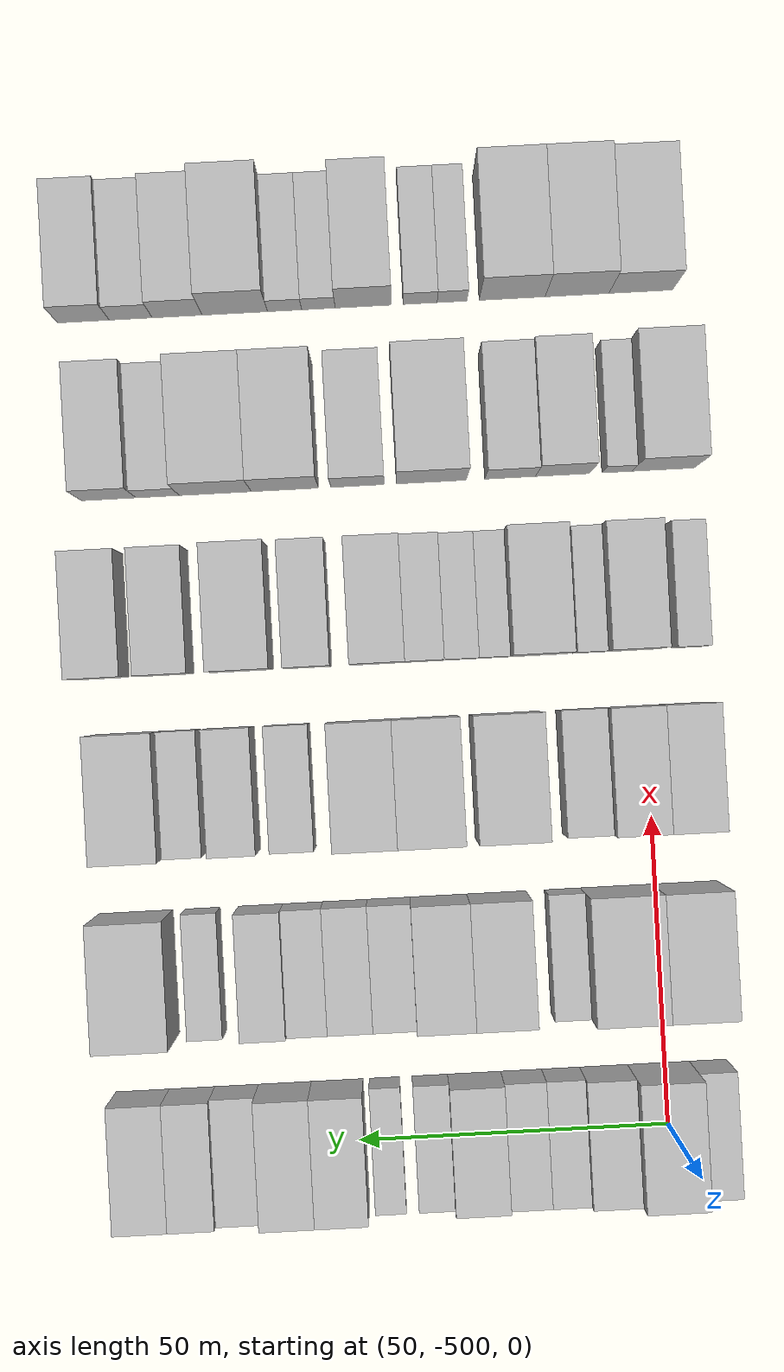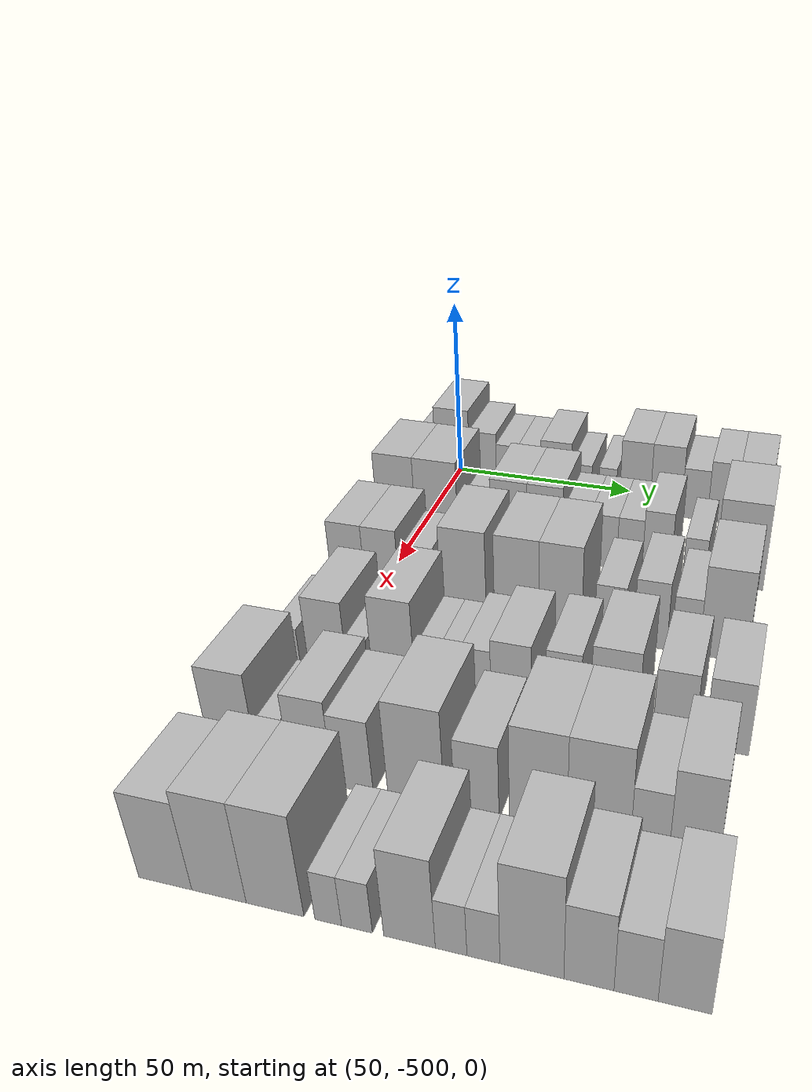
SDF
<sdf version="1.6">
 <world name="default">
  <model name="building_1">
   <static>1</static>
   <pose>50.0000 -506.9916 0 0.000000 0.000000 0.000000</pose>
   <link name="link">
    <pose>0 0 7.50 0 0 0</pose>
    <collision name="collision"><geometry><box><size>20.0000 6.0168 15.0000</size></box></geometry></collision>
    <visual name="visual">
     <cast_shadows>0</cast_shadows>
     <geometry><box><size>20.0000 6.0168 15.0000</size></box></geometry>
     <material>
      <script>
       <uri>model://HANNAS_wall/materials/scripts</uri>
       <uri>model://HANNAS_wall/materials/textures</uri>
       <name>vrc/HANNAS_wall</name>
      </script>
     </material>
    </visual>
   </link>
  </model>
  <model name="building_2">
   <static>1</static>
   <pose>50.0000 -498.9707 0 0.000000 0.000000 0.000000</pose>
   <link name="link">
    <pose>0 0 12.00 0 0 0</pose>
    <collision name="collision"><geometry><box><size>20.0000 10.0249 24.0000</size></box></geometry></collision>
    <visual name="visual">
     <cast_shadows>0</cast_shadows>
     <geometry><box><size>20.0000 10.0249 24.0000</size></box></geometry>
     <material>
      <script>
       <uri>model://HANNAS_wall/materials/scripts</uri>
       <uri>model://HANNAS_wall/materials/textures</uri>
       <name>vrc/HANNAS_wall</name>
      </script>
     </material>
    </visual>
   </link>
  </model>
  <model name="building_3">
   <static>1</static>
   <pose>50.0000 -490.0602 0 0.000000 0.000000 0.000000</pose>
   <link name="link">
    <pose>0 0 9.00 0 0 0</pose>
    <collision name="collision"><geometry><box><size>20.0000 7.7961 18.0000</size></box></geometry></collision>
    <visual name="visual">
     <cast_shadows>0</cast_shadows>
     <geometry><box><size>20.0000 7.7961 18.0000</size></box></geometry>
     <material>
      <script>
       <uri>model://HANNAS_wall/materials/scripts</uri>
       <uri>model://HANNAS_wall/materials/textures</uri>
       <name>vrc/HANNAS_wall</name>
      </script>
     </material>
    </visual>
   </link>
  </model>
  <model name="building_4">
   <static>1</static>
   <pose>50.0000 -483.0821 0 0.000000 0.000000 0.000000</pose>
   <link name="link">
    <pose>0 0 7.50 0 0 0</pose>
    <collision name="collision"><geometry><box><size>20.0000 6.1601 15.0000</size></box></geometry></collision>
    <visual name="visual">
     <cast_shadows>0</cast_shadows>
     <geometry><box><size>20.0000 6.1601 15.0000</size></box></geometry>
     <material>
      <script>
       <uri>model://HANNAS_wall/materials/scripts</uri>
       <uri>model://HANNAS_wall/materials/textures</uri>
       <name>vrc/HANNAS_wall</name>
      </script>
     </material>
    </visual>
   </link>
  </model>
  <model name="building_5">
   <static>1</static>
   <pose>50.0000 -476.6821 0 0.000000 0.000000 0.000000</pose>
   <link name="link">
    <pose>0 0 7.50 0 0 0</pose>
    <collision name="collision"><geometry><box><size>20.0000 6.6398 15.0000</size></box></geometry></collision>
    <visual name="visual">
     <cast_shadows>0</cast_shadows>
     <geometry><box><size>20.0000 6.6398 15.0000</size></box></geometry>
     <material>
      <script>
       <uri>model://HANNAS_wall/materials/scripts</uri>
       <uri>model://HANNAS_wall/materials/textures</uri>
       <name>vrc/HANNAS_wall</name>
      </script>
     </material>
    </visual>
   </link>
  </model>
  <model name="building_6">
   <static>1</static>
   <pose>50.0000 -469.0434 0 0.000000 0.000000 0.000000</pose>
   <link name="link">
    <pose>0 0 9.00 0 0 0</pose>
    <collision name="collision"><geometry><box><size>20.0000 8.6375 18.0000</size></box></geometry></collision>
    <visual name="visual">
     <cast_shadows>0</cast_shadows>
     <geometry><box><size>20.0000 8.6375 18.0000</size></box></geometry>
     <material>
      <script>
       <uri>model://HANNAS_wall/materials/scripts</uri>
       <uri>model://HANNAS_wall/materials/textures</uri>
       <name>vrc/HANNAS_wall</name>
      </script>
     </material>
    </visual>
   </link>
  </model>
  <model name="building_7">
   <static>1</static>
   <pose>50.0000 -461.8559 0 0.000000 0.000000 0.000000</pose>
   <link name="link">
    <pose>0 0 6.00 0 0 0</pose>
    <collision name="collision"><geometry><box><size>20.0000 5.7375 12.0000</size></box></geometry></collision>
    <visual name="visual">
     <cast_shadows>0</cast_shadows>
     <geometry><box><size>20.0000 5.7375 12.0000</size></box></geometry>
     <material>
      <script>
       <uri>model://HANNAS_wall/materials/scripts</uri>
       <uri>model://HANNAS_wall/materials/textures</uri>
       <name>vrc/HANNAS_wall</name>
      </script>
     </material>
    </visual>
   </link>
  </model>
  <model name="building_8">
   <static>1</static>
   <pose>50.0000 -454.5249 0 0.000000 0.000000 0.000000</pose>
   <link name="link">
    <pose>0 0 6.00 0 0 0</pose>
    <collision name="collision"><geometry><box><size>20.0000 4.9245 12.0000</size></box></geometry></collision>
    <visual name="visual">
     <cast_shadows>0</cast_shadows>
     <geometry><box><size>20.0000 4.9245 12.0000</size></box></geometry>
     <material>
      <script>
       <uri>model://HANNAS_wall/materials/scripts</uri>
       <uri>model://HANNAS_wall/materials/textures</uri>
       <name>vrc/HANNAS_wall</name>
      </script>
     </material>
    </visual>
   </link>
  </model>
  <model name="building_9">
   <static>1</static>
   <pose>50.0000 -446.8596 0 0.000000 0.000000 0.000000</pose>
   <link name="link">
    <pose>0 0 10.50 0 0 0</pose>
    <collision name="collision"><geometry><box><size>20.0000 8.4061 21.0000</size></box></geometry></collision>
    <visual name="visual">
     <cast_shadows>0</cast_shadows>
     <geometry><box><size>20.0000 8.4061 21.0000</size></box></geometry>
     <material>
      <script>
       <uri>model://HANNAS_wall/materials/scripts</uri>
       <uri>model://HANNAS_wall/materials/textures</uri>
       <name>vrc/HANNAS_wall</name>
      </script>
     </material>
    </visual>
   </link>
  </model>
  <model name="building_10">
   <static>1</static>
   <pose>50.0000 -438.3523 0 0.000000 0.000000 0.000000</pose>
   <link name="link">
    <pose>0 0 10.50 0 0 0</pose>
    <collision name="collision"><geometry><box><size>20.0000 8.6085 21.0000</size></box></geometry></collision>
    <visual name="visual">
     <cast_shadows>0</cast_shadows>
     <geometry><box><size>20.0000 8.6085 21.0000</size></box></geometry>
     <material>
      <script>
       <uri>model://HANNAS_wall/materials/scripts</uri>
       <uri>model://HANNAS_wall/materials/textures</uri>
       <name>vrc/HANNAS_wall</name>
      </script>
     </material>
    </visual>
   </link>
  </model>
  <model name="building_11">
   <static>1</static>
   <pose>50.0000 -430.5139 0 0.000000 0.000000 0.000000</pose>
   <link name="link">
    <pose>0 0 7.50 0 0 0</pose>
    <collision name="collision"><geometry><box><size>20.0000 7.0684 15.0000</size></box></geometry></collision>
    <visual name="visual">
     <cast_shadows>0</cast_shadows>
     <geometry><box><size>20.0000 7.0684 15.0000</size></box></geometry>
     <material>
      <script>
       <uri>model://HANNAS_wall/materials/scripts</uri>
       <uri>model://HANNAS_wall/materials/textures</uri>
       <name>vrc/HANNAS_wall</name>
      </script>
     </material>
    </visual>
   </link>
  </model>
  <model name="building_12">
   <static>1</static>
   <pose>50.0000 -423.2863 0 0.000000 0.000000 0.000000</pose>
   <link name="link">
    <pose>0 0 9.00 0 0 0</pose>
    <collision name="collision"><geometry><box><size>20.0000 7.3868 18.0000</size></box></geometry></collision>
    <visual name="visual">
     <cast_shadows>0</cast_shadows>
     <geometry><box><size>20.0000 7.3868 18.0000</size></box></geometry>
     <material>
      <script>
       <uri>model://HANNAS_wall/materials/scripts</uri>
       <uri>model://HANNAS_wall/materials/textures</uri>
       <name>vrc/HANNAS_wall</name>
      </script>
     </material>
    </visual>
   </link>
  </model>
  <model name="building_13">
   <static>1</static>
   <pose>50.0000 -415.2839 0 0.000000 0.000000 0.000000</pose>
   <link name="link">
    <pose>0 0 9.00 0 0 0</pose>
    <collision name="collision"><geometry><box><size>20.0000 8.6180 18.0000</size></box></geometry></collision>
    <visual name="visual">
     <cast_shadows>0</cast_shadows>
     <geometry><box><size>20.0000 8.6180 18.0000</size></box></geometry>
     <material>
      <script>
       <uri>model://HANNAS_wall/materials/scripts</uri>
       <uri>model://HANNAS_wall/materials/textures</uri>
       <name>vrc/HANNAS_wall</name>
      </script>
     </material>
    </visual>
   </link>
  </model>
  <model name="building_123">
   <static>1</static>
   <pose>79.0000 -504.6956 0 0.000000 0.000000 0.000000</pose>
   <link name="link">
    <pose>0 0 12.00 0 0 0</pose>
    <collision name="collision"><geometry><box><size>20.0000 10.6087 24.0000</size></box></geometry></collision>
    <visual name="visual">
     <cast_shadows>0</cast_shadows>
     <geometry><box><size>20.0000 10.6087 24.0000</size></box></geometry>
     <material>
      <script>
       <uri>model://HANNAS_wall/materials/scripts</uri>
       <uri>model://HANNAS_wall/materials/textures</uri>
       <name>vrc/HANNAS_wall</name>
      </script>
     </material>
    </visual>
   </link>
  </model>
  <model name="building_124">
   <static>1</static>
   <pose>79.0000 -493.6152 0 0.000000 0.000000 0.000000</pose>
   <link name="link">
    <pose>0 0 12.00 0 0 0</pose>
    <collision name="collision"><geometry><box><size>20.0000 11.5521 24.0000</size></box></geometry></collision>
    <visual name="visual">
     <cast_shadows>0</cast_shadows>
     <geometry><box><size>20.0000 11.5521 24.0000</size></box></geometry>
     <material>
      <script>
       <uri>model://HANNAS_wall/materials/scripts</uri>
       <uri>model://HANNAS_wall/materials/textures</uri>
       <name>vrc/HANNAS_wall</name>
      </script>
     </material>
    </visual>
   </link>
  </model>
  <model name="building_125">
   <static>1</static>
   <pose>79.0000 -484.9370 0 0.000000 0.000000 0.000000</pose>
   <link name="link">
    <pose>0 0 6.00 0 0 0</pose>
    <collision name="collision"><geometry><box><size>20.0000 5.8043 12.0000</size></box></geometry></collision>
    <visual name="visual">
     <cast_shadows>0</cast_shadows>
     <geometry><box><size>20.0000 5.8043 12.0000</size></box></geometry>
     <material>
      <script>
       <uri>model://HANNAS_wall/materials/scripts</uri>
       <uri>model://HANNAS_wall/materials/textures</uri>
       <name>vrc/HANNAS_wall</name>
      </script>
     </material>
    </visual>
   </link>
  </model>
  <model name="building_126">
   <static>1</static>
   <pose>79.0000 -474.2090 0 0.000000 0.000000 0.000000</pose>
   <link name="link">
    <pose>0 0 10.50 0 0 0</pose>
    <collision name="collision"><geometry><box><size>20.0000 9.6517 21.0000</size></box></geometry></collision>
    <visual name="visual">
     <cast_shadows>0</cast_shadows>
     <geometry><box><size>20.0000 9.6517 21.0000</size></box></geometry>
     <material>
      <script>
       <uri>model://HANNAS_wall/materials/scripts</uri>
       <uri>model://HANNAS_wall/materials/textures</uri>
       <name>vrc/HANNAS_wall</name>
      </script>
     </material>
    </visual>
   </link>
  </model>
  <model name="building_127">
   <static>1</static>
   <pose>79.0000 -464.7738 0 0.000000 0.000000 0.000000</pose>
   <link name="link">
    <pose>0 0 10.50 0 0 0</pose>
    <collision name="collision"><geometry><box><size>20.0000 9.2188 21.0000</size></box></geometry></collision>
    <visual name="visual">
     <cast_shadows>0</cast_shadows>
     <geometry><box><size>20.0000 9.2188 21.0000</size></box></geometry>
     <material>
      <script>
       <uri>model://HANNAS_wall/materials/scripts</uri>
       <uri>model://HANNAS_wall/materials/textures</uri>
       <name>vrc/HANNAS_wall</name>
      </script>
     </material>
    </visual>
   </link>
  </model>
  <model name="building_128">
   <static>1</static>
   <pose>79.0000 -456.6982 0 0.000000 0.000000 0.000000</pose>
   <link name="link">
    <pose>0 0 7.50 0 0 0</pose>
    <collision name="collision"><geometry><box><size>20.0000 6.9325 15.0000</size></box></geometry></collision>
    <visual name="visual">
     <cast_shadows>0</cast_shadows>
     <geometry><box><size>20.0000 6.9325 15.0000</size></box></geometry>
     <material>
      <script>
       <uri>model://HANNAS_wall/materials/scripts</uri>
       <uri>model://HANNAS_wall/materials/textures</uri>
       <name>vrc/HANNAS_wall</name>
      </script>
     </material>
    </visual>
   </link>
  </model>
  <model name="building_129">
   <static>1</static>
   <pose>79.0000 -449.6435 0 0.000000 0.000000 0.000000</pose>
   <link name="link">
    <pose>0 0 7.50 0 0 0</pose>
    <collision name="collision"><geometry><box><size>20.0000 7.1769 15.0000</size></box></geometry></collision>
    <visual name="visual">
     <cast_shadows>0</cast_shadows>
     <geometry><box><size>20.0000 7.1769 15.0000</size></box></geometry>
     <material>
      <script>
       <uri>model://HANNAS_wall/materials/scripts</uri>
       <uri>model://HANNAS_wall/materials/textures</uri>
       <name>vrc/HANNAS_wall</name>
      </script>
     </material>
    </visual>
   </link>
  </model>
  <model name="building_130">
   <static>1</static>
   <pose>79.0000 -442.8401 0 0.000000 0.000000 0.000000</pose>
   <link name="link">
    <pose>0 0 7.50 0 0 0</pose>
    <collision name="collision"><geometry><box><size>20.0000 6.4299 15.0000</size></box></geometry></collision>
    <visual name="visual">
     <cast_shadows>0</cast_shadows>
     <geometry><box><size>20.0000 6.4299 15.0000</size></box></geometry>
     <material>
      <script>
       <uri>model://HANNAS_wall/materials/scripts</uri>
       <uri>model://HANNAS_wall/materials/textures</uri>
       <name>vrc/HANNAS_wall</name>
      </script>
     </material>
    </visual>
   </link>
  </model>
  <model name="building_131">
   <static>1</static>
   <pose>79.0000 -436.0194 0 0.000000 0.000000 0.000000</pose>
   <link name="link">
    <pose>0 0 9.00 0 0 0</pose>
    <collision name="collision"><geometry><box><size>20.0000 7.2114 18.0000</size></box></geometry></collision>
    <visual name="visual">
     <cast_shadows>0</cast_shadows>
     <geometry><box><size>20.0000 7.2114 18.0000</size></box></geometry>
     <material>
      <script>
       <uri>model://HANNAS_wall/materials/scripts</uri>
       <uri>model://HANNAS_wall/materials/textures</uri>
       <name>vrc/HANNAS_wall</name>
      </script>
     </material>
    </visual>
   </link>
  </model>
  <model name="building_132">
   <static>1</static>
   <pose>79.0000 -426.5949 0 0.000000 0.000000 0.000000</pose>
   <link name="link">
    <pose>0 0 6.00 0 0 0</pose>
    <collision name="collision"><geometry><box><size>20.0000 5.6375 12.0000</size></box></geometry></collision>
    <visual name="visual">
     <cast_shadows>0</cast_shadows>
     <geometry><box><size>20.0000 5.6375 12.0000</size></box></geometry>
     <material>
      <script>
       <uri>model://HANNAS_wall/materials/scripts</uri>
       <uri>model://HANNAS_wall/materials/textures</uri>
       <name>vrc/HANNAS_wall</name>
      </script>
     </material>
    </visual>
   </link>
  </model>
  <model name="building_133">
   <static>1</static>
   <pose>79.0000 -415.8075 0 0.000000 0.000000 0.000000</pose>
   <link name="link">
    <pose>0 0 12.00 0 0 0</pose>
    <collision name="collision"><geometry><box><size>20.0000 11.9374 24.0000</size></box></geometry></collision>
    <visual name="visual">
     <cast_shadows>0</cast_shadows>
     <geometry><box><size>20.0000 11.9374 24.0000</size></box></geometry>
     <material>
      <script>
       <uri>model://HANNAS_wall/materials/scripts</uri>
       <uri>model://HANNAS_wall/materials/textures</uri>
       <name>vrc/HANNAS_wall</name>
      </script>
     </material>
    </visual>
   </link>
  </model>
  <model name="building_236">
   <static>1</static>
   <pose>108.0000 -505.6876 0 0.000000 0.000000 0.000000</pose>
   <link name="link">
    <pose>0 0 10.50 0 0 0</pose>
    <collision name="collision"><geometry><box><size>20.0000 8.6249 21.0000</size></box></geometry></collision>
    <visual name="visual">
     <cast_shadows>0</cast_shadows>
     <geometry><box><size>20.0000 8.6249 21.0000</size></box></geometry>
     <material>
      <script>
       <uri>model://HANNAS_wall/materials/scripts</uri>
       <uri>model://HANNAS_wall/materials/textures</uri>
       <name>vrc/HANNAS_wall</name>
      </script>
     </material>
    </visual>
   </link>
  </model>
  <model name="building_237">
   <static>1</static>
   <pose>108.0000 -497.0589 0 0.000000 0.000000 0.000000</pose>
   <link name="link">
    <pose>0 0 10.50 0 0 0</pose>
    <collision name="collision"><geometry><box><size>20.0000 8.6325 21.0000</size></box></geometry></collision>
    <visual name="visual">
     <cast_shadows>0</cast_shadows>
     <geometry><box><size>20.0000 8.6325 21.0000</size></box></geometry>
     <material>
      <script>
       <uri>model://HANNAS_wall/materials/scripts</uri>
       <uri>model://HANNAS_wall/materials/textures</uri>
       <name>vrc/HANNAS_wall</name>
      </script>
     </material>
    </visual>
   </link>
  </model>
  <model name="building_238">
   <static>1</static>
   <pose>108.0000 -489.0764 0 0.000000 0.000000 0.000000</pose>
   <link name="link">
    <pose>0 0 7.50 0 0 0</pose>
    <collision name="collision"><geometry><box><size>20.0000 7.3325 15.0000</size></box></geometry></collision>
    <visual name="visual">
     <cast_shadows>0</cast_shadows>
     <geometry><box><size>20.0000 7.3325 15.0000</size></box></geometry>
     <material>
      <script>
       <uri>model://HANNAS_wall/materials/scripts</uri>
       <uri>model://HANNAS_wall/materials/textures</uri>
       <name>vrc/HANNAS_wall</name>
      </script>
     </material>
    </visual>
   </link>
  </model>
  <model name="building_239">
   <static>1</static>
   <pose>108.0000 -476.8545 0 0.000000 0.000000 0.000000</pose>
   <link name="link">
    <pose>0 0 12.00 0 0 0</pose>
    <collision name="collision"><geometry><box><size>20.0000 11.1114 24.0000</size></box></geometry></collision>
    <visual name="visual">
     <cast_shadows>0</cast_shadows>
     <geometry><box><size>20.0000 11.1114 24.0000</size></box></geometry>
     <material>
      <script>
       <uri>model://HANNAS_wall/materials/scripts</uri>
       <uri>model://HANNAS_wall/materials/textures</uri>
       <name>vrc/HANNAS_wall</name>
      </script>
     </material>
    </visual>
   </link>
  </model>
  <model name="building_240">
   <static>1</static>
   <pose>108.0000 -463.9745 0 0.000000 0.000000 0.000000</pose>
   <link name="link">
    <pose>0 0 12.00 0 0 0</pose>
    <collision name="collision"><geometry><box><size>20.0000 10.6487 24.0000</size></box></geometry></collision>
    <visual name="visual">
     <cast_shadows>0</cast_shadows>
     <geometry><box><size>20.0000 10.6487 24.0000</size></box></geometry>
     <material>
      <script>
       <uri>model://HANNAS_wall/materials/scripts</uri>
       <uri>model://HANNAS_wall/materials/textures</uri>
       <name>vrc/HANNAS_wall</name>
      </script>
     </material>
    </visual>
   </link>
  </model>
  <model name="building_241">
   <static>1</static>
   <pose>108.0000 -453.5758 0 0.000000 0.000000 0.000000</pose>
   <link name="link">
    <pose>0 0 12.00 0 0 0</pose>
    <collision name="collision"><geometry><box><size>20.0000 10.1487 24.0000</size></box></geometry></collision>
    <visual name="visual">
     <cast_shadows>0</cast_shadows>
     <geometry><box><size>20.0000 10.1487 24.0000</size></box></geometry>
     <material>
      <script>
       <uri>model://HANNAS_wall/materials/scripts</uri>
       <uri>model://HANNAS_wall/materials/textures</uri>
       <name>vrc/HANNAS_wall</name>
      </script>
     </material>
    </visual>
   </link>
  </model>
  <model name="building_242">
   <static>1</static>
   <pose>108.0000 -441.9894 0 0.000000 0.000000 0.000000</pose>
   <link name="link">
    <pose>0 0 7.50 0 0 0</pose>
    <collision name="collision"><geometry><box><size>20.0000 7.0241 15.0000</size></box></geometry></collision>
    <visual name="visual">
     <cast_shadows>0</cast_shadows>
     <geometry><box><size>20.0000 7.0241 15.0000</size></box></geometry>
     <material>
      <script>
       <uri>model://HANNAS_wall/materials/scripts</uri>
       <uri>model://HANNAS_wall/materials/textures</uri>
       <name>vrc/HANNAS_wall</name>
      </script>
     </material>
    </visual>
   </link>
  </model>
  <model name="building_243">
   <static>1</static>
   <pose>108.0000 -432.6683 0 0.000000 0.000000 0.000000</pose>
   <link name="link">
    <pose>0 0 9.00 0 0 0</pose>
    <collision name="collision"><geometry><box><size>20.0000 7.6180 18.0000</size></box></geometry></collision>
    <visual name="visual">
     <cast_shadows>0</cast_shadows>
     <geometry><box><size>20.0000 7.6180 18.0000</size></box></geometry>
     <material>
      <script>
       <uri>model://HANNAS_wall/materials/scripts</uri>
       <uri>model://HANNAS_wall/materials/textures</uri>
       <name>vrc/HANNAS_wall</name>
      </script>
     </material>
    </visual>
   </link>
  </model>
  <model name="building_244">
   <static>1</static>
   <pose>108.0000 -424.7273 0 0.000000 0.000000 0.000000</pose>
   <link name="link">
    <pose>0 0 7.50 0 0 0</pose>
    <collision name="collision"><geometry><box><size>20.0000 6.2641 15.0000</size></box></geometry></collision>
    <visual name="visual">
     <cast_shadows>0</cast_shadows>
     <geometry><box><size>20.0000 6.2641 15.0000</size></box></geometry>
     <material>
      <script>
       <uri>model://HANNAS_wall/materials/scripts</uri>
       <uri>model://HANNAS_wall/materials/textures</uri>
       <name>vrc/HANNAS_wall</name>
      </script>
     </material>
    </visual>
   </link>
  </model>
  <model name="building_245">
   <static>1</static>
   <pose>108.0000 -416.2631 0 0.000000 0.000000 0.000000</pose>
   <link name="link">
    <pose>0 0 12.00 0 0 0</pose>
    <collision name="collision"><geometry><box><size>20.0000 10.6641 24.0000</size></box></geometry></collision>
    <visual name="visual">
     <cast_shadows>0</cast_shadows>
     <geometry><box><size>20.0000 10.6641 24.0000</size></box></geometry>
     <material>
      <script>
       <uri>model://HANNAS_wall/materials/scripts</uri>
       <uri>model://HANNAS_wall/materials/textures</uri>
       <name>vrc/HANNAS_wall</name>
      </script>
     </material>
    </visual>
   </link>
  </model>
  <model name="building_343">
   <static>1</static>
   <pose>137.0000 -507.3043 0 0.000000 0.000000 0.000000</pose>
   <link name="link">
    <pose>0 0 6.00 0 0 0</pose>
    <collision name="collision"><geometry><box><size>20.0000 5.3915 12.0000</size></box></geometry></collision>
    <visual name="visual">
     <cast_shadows>0</cast_shadows>
     <geometry><box><size>20.0000 5.3915 12.0000</size></box></geometry>
     <material>
      <script>
       <uri>model://HANNAS_wall/materials/scripts</uri>
       <uri>model://HANNAS_wall/materials/textures</uri>
       <name>vrc/HANNAS_wall</name>
      </script>
     </material>
    </visual>
   </link>
  </model>
  <model name="building_344">
   <static>1</static>
   <pose>137.0000 -498.0900 0 0.000000 0.000000 0.000000</pose>
   <link name="link">
    <pose>0 0 10.50 0 0 0</pose>
    <collision name="collision"><geometry><box><size>20.0000 9.0370 21.0000</size></box></geometry></collision>
    <visual name="visual">
     <cast_shadows>0</cast_shadows>
     <geometry><box><size>20.0000 9.0370 21.0000</size></box></geometry>
     <material>
      <script>
       <uri>model://HANNAS_wall/materials/scripts</uri>
       <uri>model://HANNAS_wall/materials/textures</uri>
       <name>vrc/HANNAS_wall</name>
      </script>
     </material>
    </visual>
   </link>
  </model>
  <model name="building_345">
   <static>1</static>
   <pose>137.0000 -491.1334 0 0.000000 0.000000 0.000000</pose>
   <link name="link">
    <pose>0 0 6.00 0 0 0</pose>
    <collision name="collision"><geometry><box><size>20.0000 4.8762 12.0000</size></box></geometry></collision>
    <visual name="visual">
     <cast_shadows>0</cast_shadows>
     <geometry><box><size>20.0000 4.8762 12.0000</size></box></geometry>
     <material>
      <script>
       <uri>model://HANNAS_wall/materials/scripts</uri>
       <uri>model://HANNAS_wall/materials/textures</uri>
       <name>vrc/HANNAS_wall</name>
      </script>
     </material>
    </visual>
   </link>
  </model>
  <model name="building_346">
   <static>1</static>
   <pose>137.0000 -482.8893 0 0.000000 0.000000 0.000000</pose>
   <link name="link">
    <pose>0 0 12.00 0 0 0</pose>
    <collision name="collision"><geometry><box><size>20.0000 9.6119 24.0000</size></box></geometry></collision>
    <visual name="visual">
     <cast_shadows>0</cast_shadows>
     <geometry><box><size>20.0000 9.6119 24.0000</size></box></geometry>
     <material>
      <script>
       <uri>model://HANNAS_wall/materials/scripts</uri>
       <uri>model://HANNAS_wall/materials/textures</uri>
       <name>vrc/HANNAS_wall</name>
      </script>
     </material>
    </visual>
   </link>
  </model>
  <model name="building_347">
   <static>1</static>
   <pose>137.0000 -475.6160 0 0.000000 0.000000 0.000000</pose>
   <link name="link">
    <pose>0 0 6.00 0 0 0</pose>
    <collision name="collision"><geometry><box><size>20.0000 4.9348 12.0000</size></box></geometry></collision>
    <visual name="visual">
     <cast_shadows>0</cast_shadows>
     <geometry><box><size>20.0000 4.9348 12.0000</size></box></geometry>
     <material>
      <script>
       <uri>model://HANNAS_wall/materials/scripts</uri>
       <uri>model://HANNAS_wall/materials/textures</uri>
       <name>vrc/HANNAS_wall</name>
      </script>
     </material>
    </visual>
   </link>
  </model>
  <model name="building_348">
   <static>1</static>
   <pose>137.0000 -470.3496 0 0.000000 0.000000 0.000000</pose>
   <link name="link">
    <pose>0 0 6.00 0 0 0</pose>
    <collision name="collision"><geometry><box><size>20.0000 5.5978 12.0000</size></box></geometry></collision>
    <visual name="visual">
     <cast_shadows>0</cast_shadows>
     <geometry><box><size>20.0000 5.5978 12.0000</size></box></geometry>
     <material>
      <script>
       <uri>model://HANNAS_wall/materials/scripts</uri>
       <uri>model://HANNAS_wall/materials/textures</uri>
       <name>vrc/HANNAS_wall</name>
      </script>
     </material>
    </visual>
   </link>
  </model>
  <model name="building_349">
   <static>1</static>
   <pose>137.0000 -464.4285 0 0.000000 0.000000 0.000000</pose>
   <link name="link">
    <pose>0 0 7.50 0 0 0</pose>
    <collision name="collision"><geometry><box><size>20.0000 6.2444 15.0000</size></box></geometry></collision>
    <visual name="visual">
     <cast_shadows>0</cast_shadows>
     <geometry><box><size>20.0000 6.2444 15.0000</size></box></geometry>
     <material>
      <script>
       <uri>model://HANNAS_wall/materials/scripts</uri>
       <uri>model://HANNAS_wall/materials/textures</uri>
       <name>vrc/HANNAS_wall</name>
      </script>
     </material>
    </visual>
   </link>
  </model>
  <model name="building_350">
   <static>1</static>
   <pose>137.0000 -456.9413 0 0.000000 0.000000 0.000000</pose>
   <link name="link">
    <pose>0 0 9.00 0 0 0</pose>
    <collision name="collision"><geometry><box><size>20.0000 8.7299 18.0000</size></box></geometry></collision>
    <visual name="visual">
     <cast_shadows>0</cast_shadows>
     <geometry><box><size>20.0000 8.7299 18.0000</size></box></geometry>
     <material>
      <script>
       <uri>model://HANNAS_wall/materials/scripts</uri>
       <uri>model://HANNAS_wall/materials/textures</uri>
       <name>vrc/HANNAS_wall</name>
      </script>
     </material>
    </visual>
   </link>
  </model>
  <model name="building_351">
   <static>1</static>
   <pose>137.0000 -445.8616 0 0.000000 0.000000 0.000000</pose>
   <link name="link">
    <pose>0 0 9.00 0 0 0</pose>
    <collision name="collision"><geometry><box><size>20.0000 7.4295 18.0000</size></box></geometry></collision>
    <visual name="visual">
     <cast_shadows>0</cast_shadows>
     <geometry><box><size>20.0000 7.4295 18.0000</size></box></geometry>
     <material>
      <script>
       <uri>model://HANNAS_wall/materials/scripts</uri>
       <uri>model://HANNAS_wall/materials/textures</uri>
       <name>vrc/HANNAS_wall</name>
      </script>
     </material>
    </visual>
   </link>
  </model>
  <model name="building_352">
   <static>1</static>
   <pose>137.0000 -435.1780 0 0.000000 0.000000 0.000000</pose>
   <link name="link">
    <pose>0 0 10.50 0 0 0</pose>
    <collision name="collision"><geometry><box><size>20.0000 9.9377 21.0000</size></box></geometry></collision>
    <visual name="visual">
     <cast_shadows>0</cast_shadows>
     <geometry><box><size>20.0000 9.9377 21.0000</size></box></geometry>
     <material>
      <script>
       <uri>model://HANNAS_wall/materials/scripts</uri>
       <uri>model://HANNAS_wall/materials/textures</uri>
       <name>vrc/HANNAS_wall</name>
      </script>
     </material>
    </visual>
   </link>
  </model>
  <model name="building_353">
   <static>1</static>
   <pose>137.0000 -422.9588 0 0.000000 0.000000 0.000000</pose>
   <link name="link">
    <pose>0 0 9.00 0 0 0</pose>
    <collision name="collision"><geometry><box><size>20.0000 8.5007 18.0000</size></box></geometry></collision>
    <visual name="visual">
     <cast_shadows>0</cast_shadows>
     <geometry><box><size>20.0000 8.5007 18.0000</size></box></geometry>
     <material>
      <script>
       <uri>model://HANNAS_wall/materials/scripts</uri>
       <uri>model://HANNAS_wall/materials/textures</uri>
       <name>vrc/HANNAS_wall</name>
      </script>
     </material>
    </visual>
   </link>
  </model>
  <model name="building_354">
   <static>1</static>
   <pose>137.0000 -412.3125 0 0.000000 0.000000 0.000000</pose>
   <link name="link">
    <pose>0 0 9.00 0 0 0</pose>
    <collision name="collision"><geometry><box><size>20.0000 8.7921 18.0000</size></box></geometry></collision>
    <visual name="visual">
     <cast_shadows>0</cast_shadows>
     <geometry><box><size>20.0000 8.7921 18.0000</size></box></geometry>
     <material>
      <script>
       <uri>model://HANNAS_wall/materials/scripts</uri>
       <uri>model://HANNAS_wall/materials/textures</uri>
       <name>vrc/HANNAS_wall</name>
      </script>
     </material>
    </visual>
   </link>
  </model>
  <model name="building_459">
   <static>1</static>
   <pose>166.0000 -504.9073 0 0.000000 0.000000 0.000000</pose>
   <link name="link">
    <pose>0 0 12.00 0 0 0</pose>
    <collision name="collision"><geometry><box><size>20.0000 10.1854 24.0000</size></box></geometry></collision>
    <visual name="visual">
     <cast_shadows>0</cast_shadows>
     <geometry><box><size>20.0000 10.1854 24.0000</size></box></geometry>
     <material>
      <script>
       <uri>model://HANNAS_wall/materials/scripts</uri>
       <uri>model://HANNAS_wall/materials/textures</uri>
       <name>vrc/HANNAS_wall</name>
      </script>
     </material>
    </visual>
   </link>
  </model>
  <model name="building_460">
   <static>1</static>
   <pose>166.0000 -497.3873 0 0.000000 0.000000 0.000000</pose>
   <link name="link">
    <pose>0 0 6.00 0 0 0</pose>
    <collision name="collision"><geometry><box><size>20.0000 4.8547 12.0000</size></box></geometry></collision>
    <visual name="visual">
     <cast_shadows>0</cast_shadows>
     <geometry><box><size>20.0000 4.8547 12.0000</size></box></geometry>
     <material>
      <script>
       <uri>model://HANNAS_wall/materials/scripts</uri>
       <uri>model://HANNAS_wall/materials/textures</uri>
       <name>vrc/HANNAS_wall</name>
      </script>
     </material>
    </visual>
   </link>
  </model>
  <model name="building_461">
   <static>1</static>
   <pose>166.0000 -488.5637 0 0.000000 0.000000 0.000000</pose>
   <link name="link">
    <pose>0 0 10.50 0 0 0</pose>
    <collision name="collision"><geometry><box><size>20.0000 8.7926 21.0000</size></box></geometry></collision>
    <visual name="visual">
     <cast_shadows>0</cast_shadows>
     <geometry><box><size>20.0000 8.7926 21.0000</size></box></geometry>
     <material>
      <script>
       <uri>model://HANNAS_wall/materials/scripts</uri>
       <uri>model://HANNAS_wall/materials/textures</uri>
       <name>vrc/HANNAS_wall</name>
      </script>
     </material>
    </visual>
   </link>
  </model>
  <model name="building_462">
   <static>1</static>
   <pose>166.0000 -480.0448 0 0.000000 0.000000 0.000000</pose>
   <link name="link">
    <pose>0 0 9.00 0 0 0</pose>
    <collision name="collision"><geometry><box><size>20.0000 8.2451 18.0000</size></box></geometry></collision>
    <visual name="visual">
     <cast_shadows>0</cast_shadows>
     <geometry><box><size>20.0000 8.2451 18.0000</size></box></geometry>
     <material>
      <script>
       <uri>model://HANNAS_wall/materials/scripts</uri>
       <uri>model://HANNAS_wall/materials/textures</uri>
       <name>vrc/HANNAS_wall</name>
      </script>
     </material>
    </visual>
   </link>
  </model>
  <model name="building_463">
   <static>1</static>
   <pose>166.0000 -467.2589 0 0.000000 0.000000 0.000000</pose>
   <link name="link">
    <pose>0 0 12.00 0 0 0</pose>
    <collision name="collision"><geometry><box><size>20.0000 11.3267 24.0000</size></box></geometry></collision>
    <visual name="visual">
     <cast_shadows>0</cast_shadows>
     <geometry><box><size>20.0000 11.3267 24.0000</size></box></geometry>
     <material>
      <script>
       <uri>model://HANNAS_wall/materials/scripts</uri>
       <uri>model://HANNAS_wall/materials/textures</uri>
       <name>vrc/HANNAS_wall</name>
      </script>
     </material>
    </visual>
   </link>
  </model>
  <model name="building_464">
   <static>1</static>
   <pose>166.0000 -455.2837 0 0.000000 0.000000 0.000000</pose>
   <link name="link">
    <pose>0 0 9.00 0 0 0</pose>
    <collision name="collision"><geometry><box><size>20.0000 8.6237 18.0000</size></box></geometry></collision>
    <visual name="visual">
     <cast_shadows>0</cast_shadows>
     <geometry><box><size>20.0000 8.6237 18.0000</size></box></geometry>
     <material>
      <script>
       <uri>model://HANNAS_wall/materials/scripts</uri>
       <uri>model://HANNAS_wall/materials/textures</uri>
       <name>vrc/HANNAS_wall</name>
      </script>
     </material>
    </visual>
   </link>
  </model>
  <model name="building_465">
   <static>1</static>
   <pose>166.0000 -443.5302 0 0.000000 0.000000 0.000000</pose>
   <link name="link">
    <pose>0 0 12.00 0 0 0</pose>
    <collision name="collision"><geometry><box><size>20.0000 10.8833 24.0000</size></box></geometry></collision>
    <visual name="visual">
     <cast_shadows>0</cast_shadows>
     <geometry><box><size>20.0000 10.8833 24.0000</size></box></geometry>
     <material>
      <script>
       <uri>model://HANNAS_wall/materials/scripts</uri>
       <uri>model://HANNAS_wall/materials/textures</uri>
       <name>vrc/HANNAS_wall</name>
      </script>
     </material>
    </visual>
   </link>
  </model>
  <model name="building_466">
   <static>1</static>
   <pose>166.0000 -432.2225 0 0.000000 0.000000 0.000000</pose>
   <link name="link">
    <pose>0 0 12.00 0 0 0</pose>
    <collision name="collision"><geometry><box><size>20.0000 11.7322 24.0000</size></box></geometry></collision>
    <visual name="visual">
     <cast_shadows>0</cast_shadows>
     <geometry><box><size>20.0000 11.7322 24.0000</size></box></geometry>
     <material>
      <script>
       <uri>model://HANNAS_wall/materials/scripts</uri>
       <uri>model://HANNAS_wall/materials/textures</uri>
       <name>vrc/HANNAS_wall</name>
      </script>
     </material>
    </visual>
   </link>
  </model>
  <model name="building_467">
   <static>1</static>
   <pose>166.0000 -422.8543 0 0.000000 0.000000 0.000000</pose>
   <link name="link">
    <pose>0 0 7.50 0 0 0</pose>
    <collision name="collision"><geometry><box><size>20.0000 7.0042 15.0000</size></box></geometry></collision>
    <visual name="visual">
     <cast_shadows>0</cast_shadows>
     <geometry><box><size>20.0000 7.0042 15.0000</size></box></geometry>
     <material>
      <script>
       <uri>model://HANNAS_wall/materials/scripts</uri>
       <uri>model://HANNAS_wall/materials/textures</uri>
       <name>vrc/HANNAS_wall</name>
      </script>
     </material>
    </visual>
   </link>
  </model>
  <model name="building_468">
   <static>1</static>
   <pose>166.0000 -414.9219 0 0.000000 0.000000 0.000000</pose>
   <link name="link">
    <pose>0 0 10.50 0 0 0</pose>
    <collision name="collision"><geometry><box><size>20.0000 8.8606 21.0000</size></box></geometry></collision>
    <visual name="visual">
     <cast_shadows>0</cast_shadows>
     <geometry><box><size>20.0000 8.8606 21.0000</size></box></geometry>
     <material>
      <script>
       <uri>model://HANNAS_wall/materials/scripts</uri>
       <uri>model://HANNAS_wall/materials/textures</uri>
       <name>vrc/HANNAS_wall</name>
      </script>
     </material>
    </visual>
   </link>
  </model>
  <model name="building_573">
   <static>1</static>
   <pose>195.0000 -502.8347 0 0.000000 0.000000 0.000000</pose>
   <link name="link">
    <pose>0 0 10.50 0 0 0</pose>
    <collision name="collision"><geometry><box><size>20.0000 10.3305 21.0000</size></box></geometry></collision>
    <visual name="visual">
     <cast_shadows>0</cast_shadows>
     <geometry><box><size>20.0000 10.3305 21.0000</size></box></geometry>
     <material>
      <script>
       <uri>model://HANNAS_wall/materials/scripts</uri>
       <uri>model://HANNAS_wall/materials/textures</uri>
       <name>vrc/HANNAS_wall</name>
      </script>
     </material>
    </visual>
   </link>
  </model>
  <model name="building_574">
   <static>1</static>
   <pose>195.0000 -492.4841 0 0.000000 0.000000 0.000000</pose>
   <link name="link">
    <pose>0 0 12.00 0 0 0</pose>
    <collision name="collision"><geometry><box><size>20.0000 10.3707 24.0000</size></box></geometry></collision>
    <visual name="visual">
     <cast_shadows>0</cast_shadows>
     <geometry><box><size>20.0000 10.3707 24.0000</size></box></geometry>
     <material>
      <script>
       <uri>model://HANNAS_wall/materials/scripts</uri>
       <uri>model://HANNAS_wall/materials/textures</uri>
       <name>vrc/HANNAS_wall</name>
      </script>
     </material>
    </visual>
   </link>
  </model>
  <model name="building_575">
   <static>1</static>
   <pose>195.0000 -481.9414 0 0.000000 0.000000 0.000000</pose>
   <link name="link">
    <pose>0 0 12.00 0 0 0</pose>
    <collision name="collision"><geometry><box><size>20.0000 10.7147 24.0000</size></box></geometry></collision>
    <visual name="visual">
     <cast_shadows>0</cast_shadows>
     <geometry><box><size>20.0000 10.7147 24.0000</size></box></geometry>
     <material>
      <script>
       <uri>model://HANNAS_wall/materials/scripts</uri>
       <uri>model://HANNAS_wall/materials/textures</uri>
       <name>vrc/HANNAS_wall</name>
      </script>
     </material>
    </visual>
   </link>
  </model>
  <model name="building_576">
   <static>1</static>
   <pose>195.0000 -472.1719 0 0.000000 0.000000 0.000000</pose>
   <link name="link">
    <pose>0 0 6.00 0 0 0</pose>
    <collision name="collision"><geometry><box><size>20.0000 4.8242 12.0000</size></box></geometry></collision>
    <visual name="visual">
     <cast_shadows>0</cast_shadows>
     <geometry><box><size>20.0000 4.8242 12.0000</size></box></geometry>
     <material>
      <script>
       <uri>model://HANNAS_wall/materials/scripts</uri>
       <uri>model://HANNAS_wall/materials/textures</uri>
       <name>vrc/HANNAS_wall</name>
      </script>
     </material>
    </visual>
   </link>
  </model>
  <model name="building_577">
   <static>1</static>
   <pose>195.0000 -466.9992 0 0.000000 0.000000 0.000000</pose>
   <link name="link">
    <pose>0 0 6.00 0 0 0</pose>
    <collision name="collision"><geometry><box><size>20.0000 5.5213 12.0000</size></box></geometry></collision>
    <visual name="visual">
     <cast_shadows>0</cast_shadows>
     <geometry><box><size>20.0000 5.5213 12.0000</size></box></geometry>
     <material>
      <script>
       <uri>model://HANNAS_wall/materials/scripts</uri>
       <uri>model://HANNAS_wall/materials/textures</uri>
       <name>vrc/HANNAS_wall</name>
      </script>
     </material>
    </visual>
   </link>
  </model>
  <model name="building_578">
   <static>1</static>
   <pose>195.0000 -457.7262 0 0.000000 0.000000 0.000000</pose>
   <link name="link">
    <pose>0 0 10.50 0 0 0</pose>
    <collision name="collision"><geometry><box><size>20.0000 9.0246 21.0000</size></box></geometry></collision>
    <visual name="visual">
     <cast_shadows>0</cast_shadows>
     <geometry><box><size>20.0000 9.0246 21.0000</size></box></geometry>
     <material>
      <script>
       <uri>model://HANNAS_wall/materials/scripts</uri>
       <uri>model://HANNAS_wall/materials/textures</uri>
       <name>vrc/HANNAS_wall</name>
      </script>
     </material>
    </visual>
   </link>
  </model>
  <model name="building_579">
   <static>1</static>
   <pose>195.0000 -450.5032 0 0.000000 0.000000 0.000000</pose>
   <link name="link">
    <pose>0 0 6.00 0 0 0</pose>
    <collision name="collision"><geometry><box><size>20.0000 5.4213 12.0000</size></box></geometry></collision>
    <visual name="visual">
     <cast_shadows>0</cast_shadows>
     <geometry><box><size>20.0000 5.4213 12.0000</size></box></geometry>
     <material>
      <script>
       <uri>model://HANNAS_wall/materials/scripts</uri>
       <uri>model://HANNAS_wall/materials/textures</uri>
       <name>vrc/HANNAS_wall</name>
      </script>
     </material>
    </visual>
   </link>
  </model>
  <model name="building_580">
   <static>1</static>
   <pose>195.0000 -445.0087 0 0.000000 0.000000 0.000000</pose>
   <link name="link">
    <pose>0 0 6.00 0 0 0</pose>
    <collision name="collision"><geometry><box><size>20.0000 5.5677 12.0000</size></box></geometry></collision>
    <visual name="visual">
     <cast_shadows>0</cast_shadows>
     <geometry><box><size>20.0000 5.5677 12.0000</size></box></geometry>
     <material>
      <script>
       <uri>model://HANNAS_wall/materials/scripts</uri>
       <uri>model://HANNAS_wall/materials/textures</uri>
       <name>vrc/HANNAS_wall</name>
      </script>
     </material>
    </visual>
   </link>
  </model>
  <model name="building_581">
   <static>1</static>
   <pose>195.0000 -436.9325 0 0.000000 0.000000 0.000000</pose>
   <link name="link">
    <pose>0 0 12.00 0 0 0</pose>
    <collision name="collision"><geometry><box><size>20.0000 10.5848 24.0000</size></box></geometry></collision>
    <visual name="visual">
     <cast_shadows>0</cast_shadows>
     <geometry><box><size>20.0000 10.5848 24.0000</size></box></geometry>
     <material>
      <script>
       <uri>model://HANNAS_wall/materials/scripts</uri>
       <uri>model://HANNAS_wall/materials/textures</uri>
       <name>vrc/HANNAS_wall</name>
      </script>
     </material>
    </visual>
   </link>
  </model>
  <model name="building_582">
   <static>1</static>
   <pose>195.0000 -427.5870 0 0.000000 0.000000 0.000000</pose>
   <link name="link">
    <pose>0 0 9.00 0 0 0</pose>
    <collision name="collision"><geometry><box><size>20.0000 8.1062 18.0000</size></box></geometry></collision>
    <visual name="visual">
     <cast_shadows>0</cast_shadows>
     <geometry><box><size>20.0000 8.1062 18.0000</size></box></geometry>
     <material>
      <script>
       <uri>model://HANNAS_wall/materials/scripts</uri>
       <uri>model://HANNAS_wall/materials/textures</uri>
       <name>vrc/HANNAS_wall</name>
      </script>
     </material>
    </visual>
   </link>
  </model>
  <model name="building_583">
   <static>1</static>
   <pose>195.0000 -420.0474 0 0.000000 0.000000 0.000000</pose>
   <link name="link">
    <pose>0 0 7.50 0 0 0</pose>
    <collision name="collision"><geometry><box><size>20.0000 6.9729 15.0000</size></box></geometry></collision>
    <visual name="visual">
     <cast_shadows>0</cast_shadows>
     <geometry><box><size>20.0000 6.9729 15.0000</size></box></geometry>
     <material>
      <script>
       <uri>model://HANNAS_wall/materials/scripts</uri>
       <uri>model://HANNAS_wall/materials/textures</uri>
       <name>vrc/HANNAS_wall</name>
      </script>
     </material>
    </visual>
   </link>
  </model>
  <model name="building_584">
   <static>1</static>
   <pose>195.0000 -412.3602 0 0.000000 0.000000 0.000000</pose>
   <link name="link">
    <pose>0 0 9.00 0 0 0</pose>
    <collision name="collision"><geometry><box><size>20.0000 8.4016 18.0000</size></box></geometry></collision>
    <visual name="visual">
     <cast_shadows>0</cast_shadows>
     <geometry><box><size>20.0000 8.4016 18.0000</size></box></geometry>
     <material>
      <script>
       <uri>model://HANNAS_wall/materials/scripts</uri>
       <uri>model://HANNAS_wall/materials/textures</uri>
       <name>vrc/HANNAS_wall</name>
      </script>
     </material>
    </visual>
   </link>
  </model>
 </world>
</sdf>
